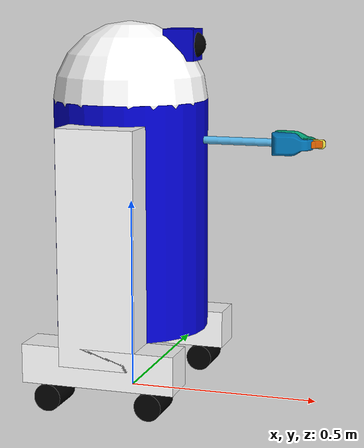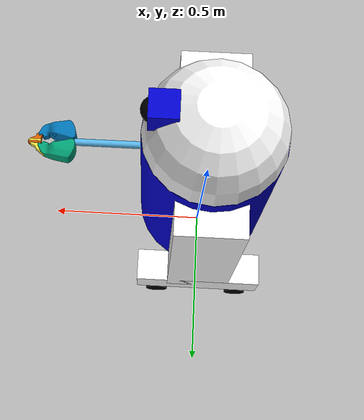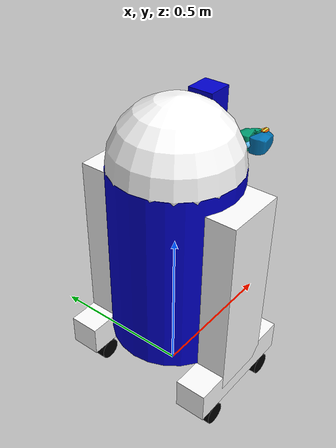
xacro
<?xml version="1.0"?>
<robot xmlns:xacro="http://www.ros.org/wiki/xacro" name="r2d2">

  <xacro:macro name="default_inertial" params="mass">
    <inertial>
      <mass value="${mass}" />
      <inertia ixx="1.0" ixy="0.0" ixz="0.0"
        iyy="1.0" iyz="0.0"
        izz="1.0" />
    </inertial>
  </xacro:macro>

  <material name="blue">
    <color rgba="0 0 0.8 1"/>
  </material>
  <material name="black">
    <color rgba="0 0 0 1"/>
  </material>
  <material name="white">
    <color rgba="1 1 1 1"/>
  </material>

  <xacro:property name="width" value="0.2" />
  <xacro:property name="bodylen" value="0.6" />
  <link name="base_link">
    <visual>
        <geometry>
            <cylinder radius="${width}" length="${bodylen}"/>
        </geometry>
        <material name="blue"/>
    </visual>
    <collision>
        <geometry>
            <cylinder radius="${width}" length="${bodylen}"/>
        </geometry>
    </collision>
    <xacro:default_inertial mass="10"/>
  </link>

  <link name="right_leg">
    <visual>
      <geometry>
        <box size="0.6 0.1 0.2"/>
      </geometry>
      <origin rpy="0 1.57075 0" xyz="0 0 -0.3"/>
      <material name="white"/>
    </visual>
    <collision>
      <geometry>
        <box size="0.6 0.1 0.2"/>
      </geometry>
      <origin rpy="0 1.57075 0" xyz="0 0 -0.3"/>
    </collision>
    <xacro:default_inertial mass="10"/>
  </link>
  <joint name="base_to_right_leg" type="fixed">
    <parent link="base_link"/>
    <child link="right_leg"/>
    <origin xyz="0 -0.22 0.25"/>
  </joint>

  <link name="right_base">
    <visual>
      <geometry>
        <box size="0.4 0.1 0.1"/>
      </geometry>
      <material name="white"/>
    </visual>
    <collision>
      <geometry>
        <box size="0.4 0.1 0.1"/>
      </geometry>
    </collision>
    <xacro:default_inertial mass="10"/>
  </link>

  <joint name="right_base_joint" type="fixed">
    <parent link="right_leg"/>
    <child link="right_base"/>
    <origin xyz="0 0 -0.6"/>
  </joint>

  <link name="right_front_wheel">
    <visual>
      <origin rpy="1.57075 0 0" xyz="0 0 0"/>
      <geometry>
        <cylinder length="0.1" radius="0.035"/>
      </geometry>
      <material name="black"/>
    </visual>
    <collision>
      <origin rpy="1.57075 0 0" xyz="0 0 0"/>
      <geometry>
        <cylinder length="0.1" radius="0.035"/>
      </geometry>
    </collision>
    <xacro:default_inertial mass="1"/>
  </link>

  <joint name="right_front_wheel_joint" type="continuous">
    <axis rpy="0 0 0" xyz="0 1 0"/>
    <parent link="right_base"/>
    <child link="right_front_wheel"/>
    <origin rpy="0 0 0" xyz="0.133333333333 0 -0.085"/>
  </joint>

  <link name="right_back_wheel">
    <visual>
      <origin rpy="1.57075 0 0" xyz="0 0 0"/>
      <geometry>
        <cylinder length="0.1" radius="0.035"/>
      </geometry>
      <material name="black"/>
    </visual>
    <collision>
      <origin rpy="1.57075 0 0" xyz="0 0 0"/>
      <geometry>
        <cylinder length="0.1" radius="0.035"/>
      </geometry>
    </collision>
    <xacro:default_inertial mass="1"/>
  </link>

  <joint name="right_back_wheel_joint" type="continuous">
    <axis rpy="0 0 0" xyz="0 1 0"/>
    <parent link="right_base"/>
    <child link="right_back_wheel"/>
    <origin rpy="0 0 0" xyz="-0.133333333333 0 -0.085"/>
  </joint>

  <link name="left_leg">
    <visual>
      <geometry>
        <box size="0.6 0.1 0.2"/>
      </geometry>
      <origin rpy="0 1.57075 0" xyz="0 0 -0.3"/>
      <material name="white"/>
    </visual>
    <collision>
      <geometry>
        <box size="0.6 0.1 0.2"/>
      </geometry>
      <origin rpy="0 1.57075 0" xyz="0 0 -0.3"/>
    </collision>
    <xacro:default_inertial mass="10"/>
  </link>

  <joint name="base_to_left_leg" type="fixed">
    <parent link="base_link"/>
    <child link="left_leg"/>
    <origin xyz="0 0.22 0.25"/>
  </joint>

  <link name="left_base">
    <visual>
      <geometry>
        <box size="0.4 0.1 0.1"/>
      </geometry>
      <material name="white"/>
    </visual>
    <collision>
      <geometry>
        <box size="0.4 0.1 0.1"/>
      </geometry>
    </collision>
    <xacro:default_inertial mass="10"/>
  </link>

  <joint name="left_base_joint" type="fixed">
    <parent link="left_leg"/>
    <child link="left_base"/>
    <origin xyz="0 0 -0.6"/>
  </joint>

  <link name="left_front_wheel">
    <visual>
      <origin rpy="1.57075 0 0" xyz="0 0 0"/>
      <geometry>
        <cylinder length="0.1" radius="0.035"/>
      </geometry>
      <material name="black"/>
    </visual>
    <collision>
      <origin rpy="1.57075 0 0" xyz="0 0 0"/>
      <geometry>
        <cylinder length="0.1" radius="0.035"/>
      </geometry>
    </collision>
    <xacro:default_inertial mass="1"/>
  </link>

  <joint name="left_front_wheel_joint" type="continuous">
    <axis rpy="0 0 0" xyz="0 1 0"/>
    <parent link="left_base"/>
    <child link="left_front_wheel"/>
    <origin rpy="0 0 0" xyz="0.133333333333 0 -0.085"/>
  </joint>

  <link name="left_back_wheel">
    <visual>
      <origin rpy="1.57075 0 0" xyz="0 0 0"/>
      <geometry>
        <cylinder length="0.1" radius="0.035"/>
      </geometry>
      <material name="black"/>
    </visual>
    <collision>
      <origin rpy="1.57075 0 0" xyz="0 0 0"/>
      <geometry>
        <cylinder length="0.1" radius="0.035"/>
      </geometry>
    </collision>
    <xacro:default_inertial mass="1"/>
  </link>

  <joint name="left_back_wheel_joint" type="continuous">
    <axis rpy="0 0 0" xyz="0 1 0"/>
    <parent link="left_base"/>
    <child link="left_back_wheel"/>
    <origin rpy="0 0 0" xyz="-0.133333333333 0 -0.085"/>
  </joint>

  <joint name="gripper_extension" type="prismatic">
    <parent link="base_link"/>
    <child link="gripper_pole"/>
    <limit effort="1000.0" lower="-0.38" upper="0" velocity="0.5"/>
    <origin rpy="0 0 0" xyz="0.19 0 0.2"/>
  </joint>

  <link name="gripper_pole">
    <visual>
      <geometry>
        <cylinder length="0.2" radius="0.01"/>
      </geometry>
      <origin rpy="0 1.57075 0 " xyz="0.1 0 0"/>
    </visual>
    <collision>
      <geometry>
        <cylinder length="0.2" radius="0.01"/>
      </geometry>
      <origin rpy="0 1.57075 0 " xyz="0.1 0 0"/>
    </collision>
    <xacro:default_inertial mass="0.05"/>
  </link>

  <joint name="left_gripper_joint" type="revolute">
    <axis xyz="0 0 1"/>
    <limit effort="1000.0" lower="0.0" upper="0.548" velocity="0.5"/>
    <origin rpy="0 0 0" xyz="0.2 0.01 0"/>
    <parent link="gripper_pole"/>
    <child link="left_gripper"/>
  </joint>

  <link name="left_gripper">
    <visual>
      <origin rpy="0.0 0 0" xyz="0 0 0"/>
      <geometry>
        <mesh filename="package://urdf_tutorial/meshes/l_finger.dae"/>
      </geometry>
    </visual>
    <collision>
      <geometry>
        <mesh filename="package://urdf_tutorial/meshes/l_finger.dae"/>
      </geometry>
      <origin rpy="0.0 0 0" xyz="0 0 0"/>
    </collision>
    <xacro:default_inertial mass="0.05"/>
  </link>

  <joint name="left_tip_joint" type="fixed">
    <parent link="left_gripper"/>
    <child link="left_tip"/>
  </joint>

  <link name="left_tip">
    <visual>
      <origin rpy="0.0 0 0" xyz="0.09137 0.00495 0"/>
      <geometry>
        <mesh filename="package://urdf_tutorial/meshes/l_finger_tip.dae"/>
      </geometry>
    </visual>
    <collision>
      <geometry>
        <mesh filename="package://urdf_tutorial/meshes/l_finger_tip.dae"/>
      </geometry>
      <origin rpy="0.0 0 0" xyz="0.09137 0.00495 0"/>
    </collision>
    <xacro:default_inertial mass="0.05"/>
  </link>

  <joint name="right_gripper_joint" type="revolute">
    <axis xyz="0 0 -1"/>
    <limit effort="1000.0" lower="0.0" upper="0.548" velocity="0.5"/>
    <origin rpy="0 0 0" xyz="0.2 -0.01 0"/>
    <parent link="gripper_pole"/>
    <child link="right_gripper"/>
  </joint>

  <link name="right_gripper">
    <visual>
      <origin rpy="-3.1415 0 0" xyz="0 0 0"/>
      <geometry>
        <mesh filename="package://urdf_tutorial/meshes/l_finger.dae"/>
      </geometry>
    </visual>
    <collision>
      <geometry>
        <mesh filename="package://urdf_tutorial/meshes/l_finger.dae"/>
      </geometry>
      <origin rpy="-3.1415 0 0" xyz="0 0 0"/>
    </collision>
    <xacro:default_inertial mass="0.05"/>
  </link>

  <joint name="right_tip_joint" type="fixed">
    <parent link="right_gripper"/>
    <child link="right_tip"/>
  </joint>

  <link name="right_tip">
    <visual>
      <origin rpy="-3.1415 0 0" xyz="0.09137 0.00495 0"/>
      <geometry>
        <mesh filename="package://urdf_tutorial/meshes/l_finger_tip.dae"/>
      </geometry>
    </visual>
    <collision>
      <geometry>
        <mesh filename="package://urdf_tutorial/meshes/l_finger_tip.dae"/>
      </geometry>
      <origin rpy="-3.1415 0 0" xyz="0.09137 0.00495 0"/>
    </collision>
    <xacro:default_inertial mass="0.05"/>
  </link>

  <link name="head">
    <visual>
      <geometry>
        <sphere radius="0.2"/>
      </geometry>
      <material name="white"/>
    </visual>
    <collision>
      <geometry>
        <sphere radius="0.2"/>
      </geometry>
    </collision>
    <xacro:default_inertial mass="2"/>
  </link>

  <joint name="head_swivel" type="continuous">
    <parent link="base_link"/>
    <child link="head"/>
    <axis xyz="0 0 1"/>
    <origin xyz="0 0 0.3"/>
  </joint>

  <link name="box">
    <visual>
      <geometry>
        <box size="0.08 0.08 0.08"/>
      </geometry>
      <material name="blue"/>
      <origin xyz="-0.04 0 0"/>
    </visual>
    <collision>
      <geometry>
        <box size="0.08 0.08 0.08"/>
      </geometry>
    </collision>
    <xacro:default_inertial mass="1"/>
  </link>

  <joint name="tobox" type="fixed">
    <parent link="head"/>
    <child link="box"/>
    <origin xyz="0.1814 0 0.1414"/>
  </joint>

  <xacro:property name="lense_r" value="0.035" />
  <link name="lense">
    <visual>
      <geometry>
        <sphere radius="${lense_r}"/>
      </geometry>
      <material name="black"/>
    </visual>
    <collision>
      <geometry>
        <sphere radius="${lense_r}"/>
      </geometry>
    </collision>
    <xacro:default_inertial mass="0.05"/>
  </link>

  <joint name="lense_joint" type="prismatic">
    <parent link="box"/>
    <child link="lense"/>
    <limit effort="1000.0" lower="-${lense_r}" upper="0" velocity="0.5"/>
    <origin rpy="0 0 0" xyz="-0.015 0 0"/>
  </joint>

  <link name="base_footprint">
  </link>

  <joint name="base_footprint_joint" type="fixed">
    <parent link="base_footprint"/>
    <child link="base_link"/>
    <origin xyz="0 0 0.47"/>
  </joint>

  <link name="eye">
  </link>

  <joint name="lense_to_eye" type="fixed">
      <parent link="lense"/>
      <child link="eye"/>
      <origin rpy="${pi/2} ${pi}  ${pi/2}"/>
  </joint>

</robot>
